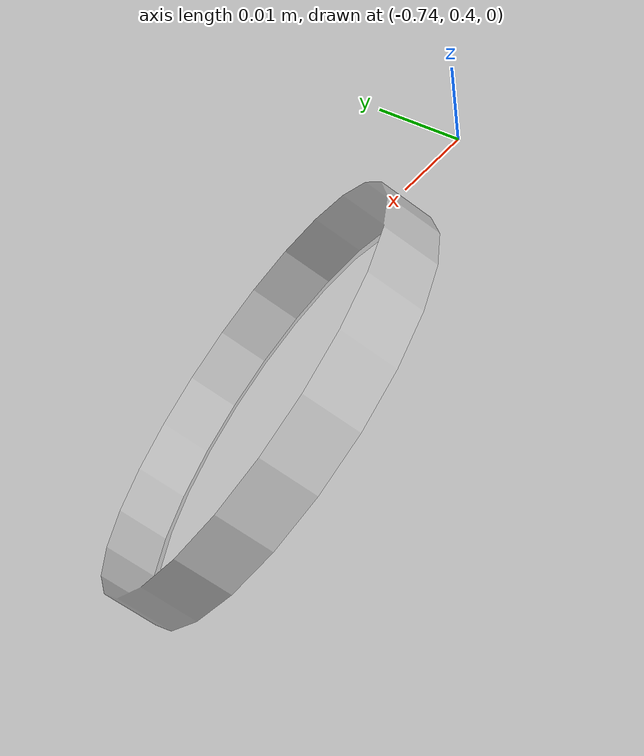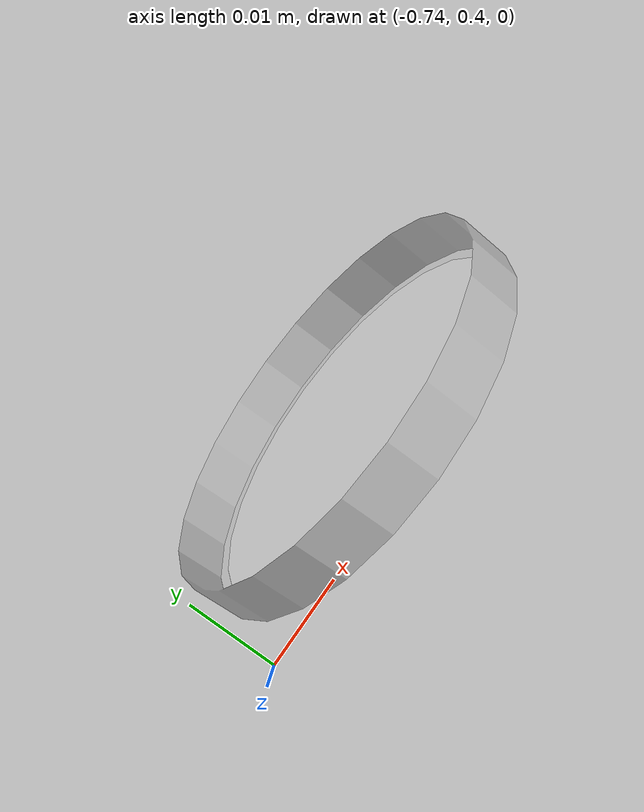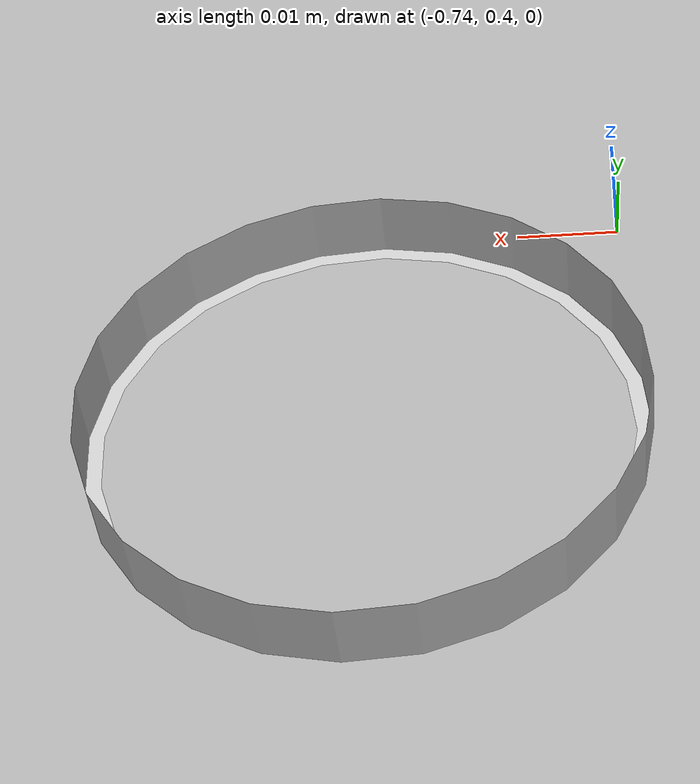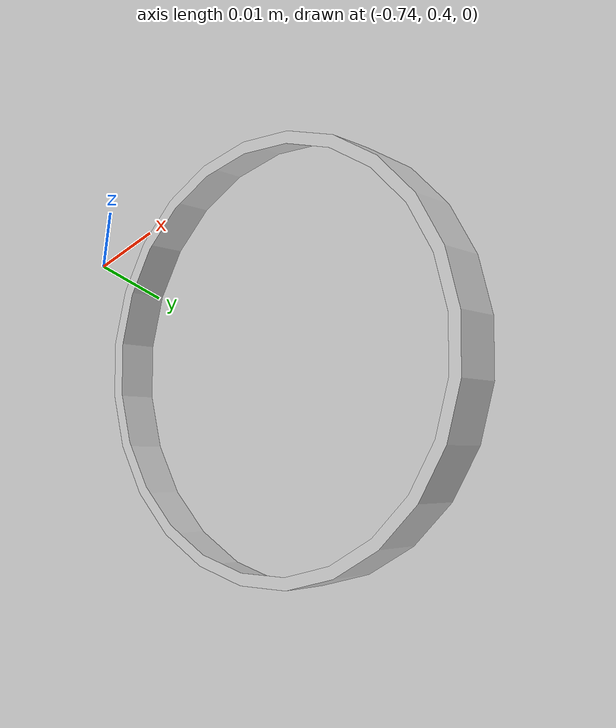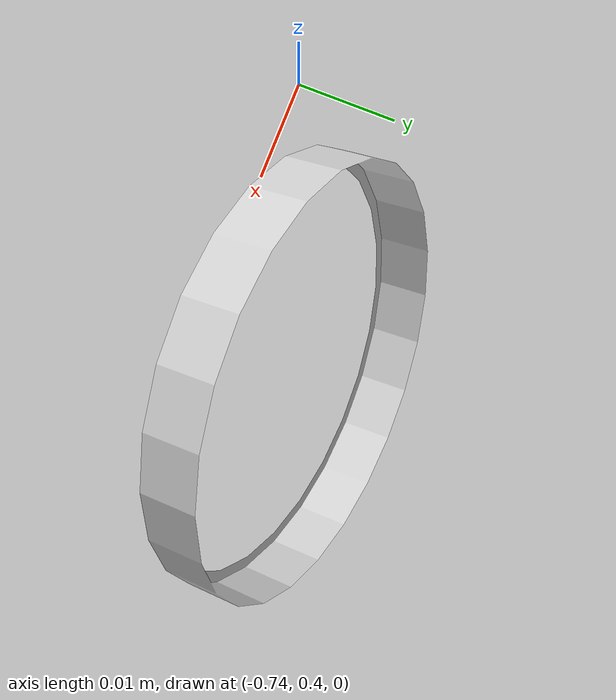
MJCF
<mujoco model="original-58">
  <default>
    <default class="visual">
      <geom group="2" type="mesh" contype="0" conaffinity="0"/>
    </default>
    <default class="collision">
      <geom group="3" type="mesh"/>
    </default>
  </default>
  <asset>
    <material name="material_0_0" specular="0.06666666666666667" shininess="0.03" rgba="0.8 0.8 0.8 1"/>
    <mesh file="original-58.obj"/>
  </asset>
  <worldbody>
    <body name="original-58">
      <geom material="material_0_0" mesh="original-58" class="visual"/>
      <geom mesh="original-58" class="collision"/>
    </body>
  </worldbody>
</mujoco>
